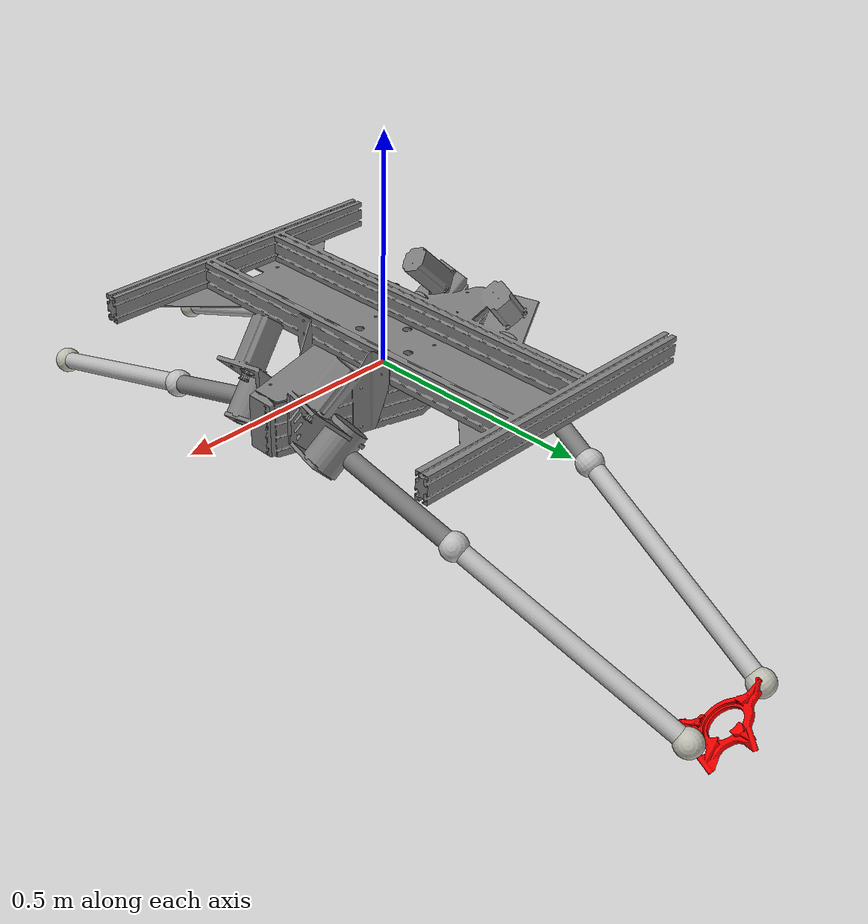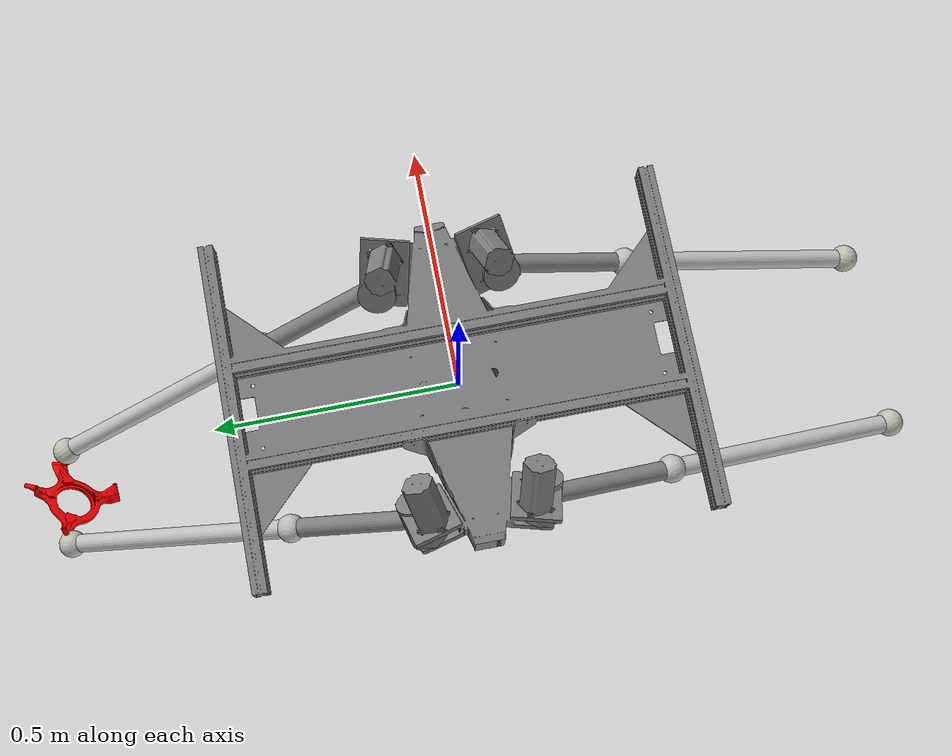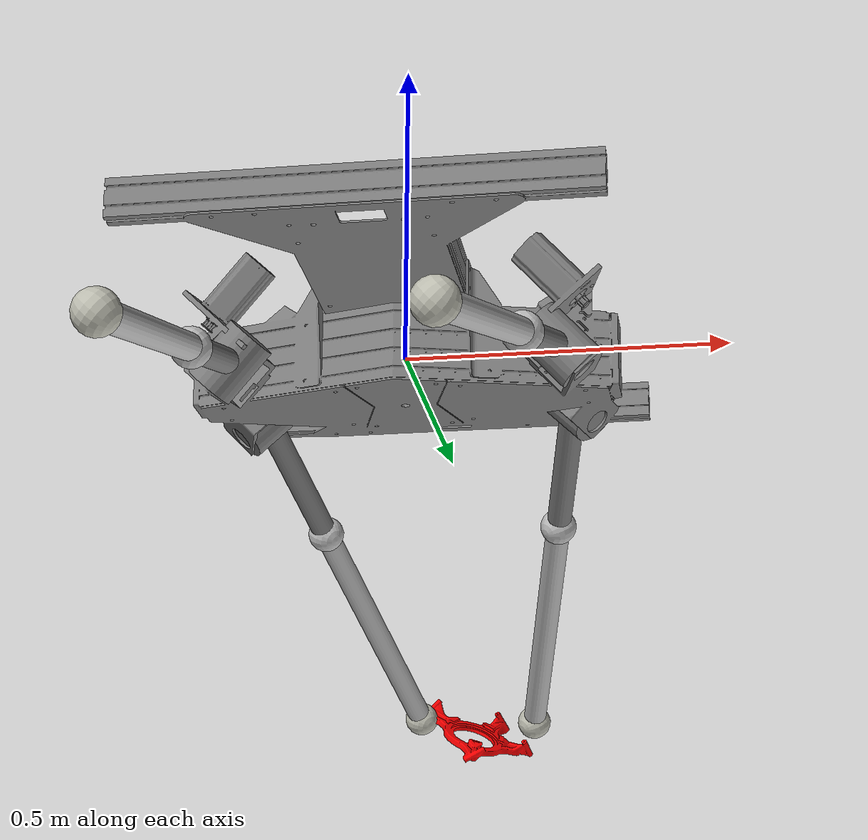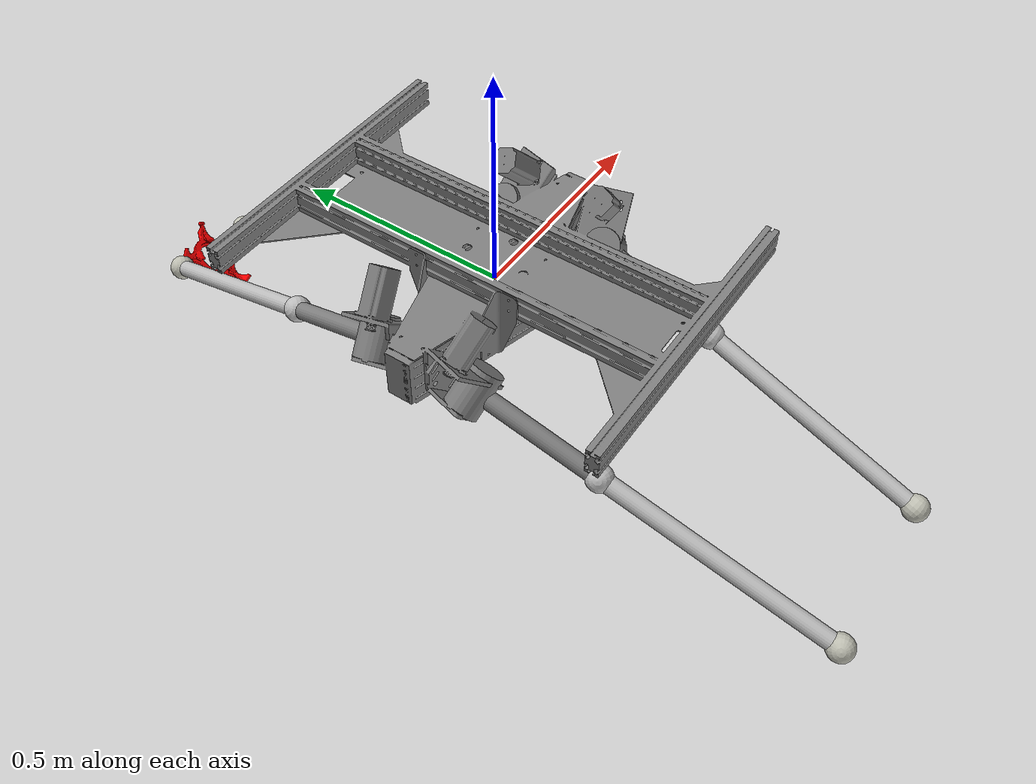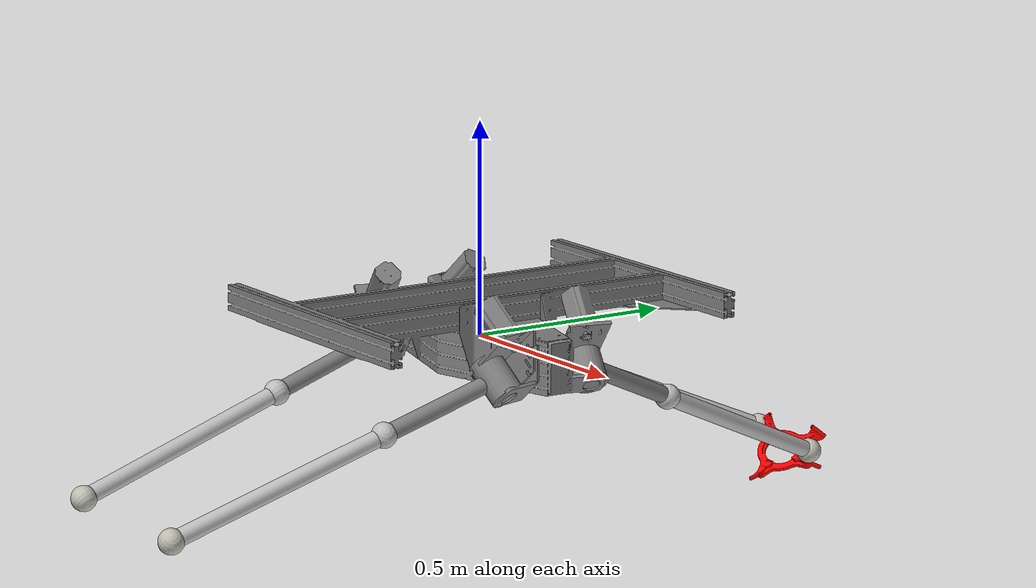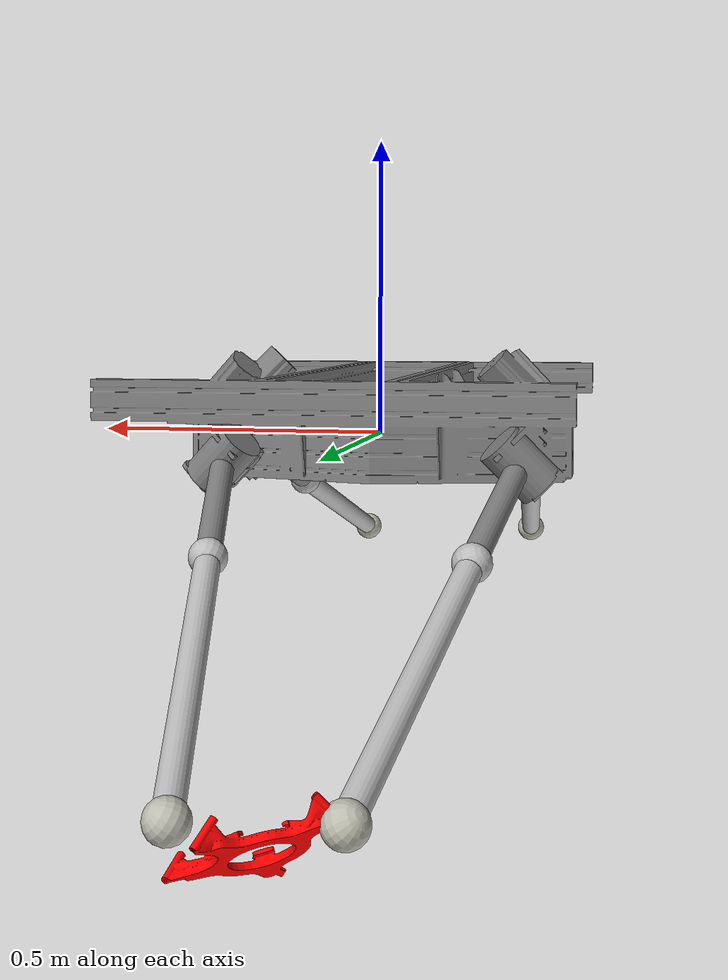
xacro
<?xml version="1.0" ?>
<robot name="Ragnar" xmlns:xacro="http://ros.org/wiki/xacro">

  <link name="base_link"/>

  <link name="base_link2">
    <inertial>
      <origin xyz="-4.80572213006859E-06 9.64495107789746E-06 -0.0184680705713898" rpy="0 0 0" />
      <mass value="26.5217124601092" />
      <inertia ixx="0.936457909215975" ixy="-0.00108838510526368" ixz="1.58187182756307E-06"
        iyy="1.50216890338436" iyz="1.0107984651762E-05" izz="2.28323593907717" />
    </inertial>
    <visual>
      <origin xyz="0 0 0" rpy="0 0 0" />
      <geometry>
        <mesh filename="package://ragnar_support/meshes/base_link.STL" />
      </geometry>
      <material name="">
        <color rgba="0.5 0.5 0.5 1" />
      </material>
    </visual>
    <collision>
      <origin xyz="0 0 0" rpy="0 0 0" />
      <geometry>
        <mesh filename="package://ragnar_support/meshes/base_link.STL" />
      </geometry>
    </collision>
  </link>

 <joint name="base_rotate" type="fixed">
    <origin xyz="0 0 0.05" rpy="0 0 1.57" />
    <parent link="base_link" />
    <child link="base_link2" />
    <axis xyz="0 0 0" />
  </joint>

<xacro:include filename="$(find ragnar_support)/urdf/ragnar_upper2_macro.xacro"/>
  <xacro:ragnar_upper2 num="1" x="0.122" y="0.249" z="-0.0877" r="-0.577" p="-0.783" w="-1.311" d1="0.300" d2="0.550"/>
<xacro:include filename="$(find ragnar_support)/urdf/ragnar_upper2_macro.xacro"/>
  <xacro:ragnar_upper2 num="2" x="-0.122" y="0.249" z="-0.0877" r="-2.698" p="-0.788" w="-1.834" d1="0.300" d2="0.550"/>
<xacro:include filename="$(find ragnar_support)/urdf/ragnar_upper2_macro.xacro"/>
  <xacro:ragnar_upper2 num="3" x="-0.122" y="-0.249" z="-0.0877" r="-0.456" p="-0.783" w="1.831" d1="0.300" d2="0.550"/>
<xacro:include filename="$(find ragnar_support)/urdf/ragnar_upper2_macro.xacro"/>
  <xacro:ragnar_upper2 num="4" x="0.122" y="-0.249" z="-0.0877" r="-2.531" p="-0.788" w="1.307" d1="0.300" d2="0.550"/>

<link name="ee_link_r">

  </link>
  <joint name="ee_joint_roll" type="revolute">
    <origin xyz="0 0.550 0"
      rpy="0 0 0" />
    <parent link="lower_arm_1_yaw" />
    <child link="ee_link_r" />
    <axis xyz="0 0 1" />
    <limit effort="0" lower="-3.1416" upper="3.1416" velocity="2.618"/>
  </joint>

  <link name="ee_link_p">

  </link>
  <joint name="ee_joint_pitch" type="revolute">
    <origin xyz="0 0 0" rpy="0 0 0" />
    <parent link="ee_link_r" />
    <child link="ee_link_p" />
    <axis xyz="1 0 0" />
<limit effort="0" lower="-3.1416" upper="3.1416" velocity="2.618"/>
  </joint>
  <link name="ee_link_y">
    <visual>
      <origin xyz="0 0 0" rpy="0 0 0" />
      <geometry>
        <mesh filename="package://ragnar_support/meshes/ee_link_y.STL" />
      </geometry>
      <material name="">
        <color rgba="1 0 0 1" />
      </material>
    </visual>
    <collision>
      <origin xyz="0 0 0" rpy="0 0 0" />
      <geometry>
        <mesh filename="package://ragnar_support/meshes/ee_link_y.STL" />
      </geometry>
    </collision>
  </link>
  <joint name="ee_joint_yaw" type="revolute">
    <origin xyz="0 0 0" rpy="5.55111512312578E-17 -2.77555756156289E-17 0" />
    <parent link="ee_link_p" />
    <child link="ee_link_y" />
    <axis xyz="0 -1 0" />
<limit effort="0" lower="-3.1416" upper="3.1416" velocity="2.618"/>
  </joint>
</robot>

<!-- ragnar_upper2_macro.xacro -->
<robot name="ragnar" xmlns:xacro="http://ros.org/wiki/xacro">
  <xacro:macro name="ragnar_upper2" params="num x y z r p w d1 d2">

  <link name="upper_arm_${num}">
    <visual>
      <origin xyz="0 0 0" rpy="0 1.57 0" />
      <geometry>
        <cylinder length="0.1" radius="0.04"/>
      </geometry>
      <material name="">
        <color rgba="0.5 0.5 0.5 1" />
      </material>
    </visual>
    <visual>
      <origin xyz="0 ${d1/2} 0" rpy="1.57 0 0" />
      <geometry>
        <cylinder length="${d1}" radius="0.02"/>
      </geometry>
      <material name="">
        <color rgba="0.5 0.5 0.5 1" />
      </material>
    </visual>

    <collision>
      <origin xyz="0 0 0" rpy="0 1.57 0" />
      <geometry>
        <cylinder length="0.1" radius="0.04"/>
      </geometry>
      <material name="">
        <color rgba="0.5 0.5 0.5 1" />
      </material>
    </collision>
    <collision>
      <origin xyz="0 ${d1/2} 0" rpy="1.57 0 0" />
      <geometry>
        <cylinder length="${d1}" radius="0.02"/>
      </geometry>
      <material name="">
        <color rgba="0.5 0.5 0.5 1" />
      </material>
    </collision>
  </link>

  <joint name="a${num}_j1" type="revolute">
    <origin xyz="${x} ${y} ${z}" rpy="${r} ${p} ${w}" />
    <parent link="base_link2" />
    <child link="upper_arm_${num}" />
    <axis xyz="-1.0 0 0" />
    <limit effort="0" lower="-3.1416" upper="3.1416" velocity="2.618"/>
  </joint>

  <link name="lower_arm_${num}_pitch"/>

  <link name="lower_arm_${num}_yaw">
    <visual>
      <origin xyz="0 0 0" rpy="0 0 0" />
      <geometry>
        <sphere radius="0.03"/>
      </geometry>
      <material name="">
        <color rgba="0.75 0.75 0.75 1" />
      </material>
    </visual>
    <visual>
      <origin xyz="0 ${d2/2} 0" rpy="1.57 0 0" />
      <geometry>
        <cylinder length="${d2}" radius="0.02"/>
      </geometry>
      <material name="">
        <color rgba="0.75 0.75 0.75 1" />
      </material>
    </visual>
    <visual>
      <origin xyz="0 ${d2} 0" rpy="0 0 0" />
      <geometry>
        <sphere radius="0.03"/>
      </geometry>
      <material name="">
        <color rgba="0.75 0.75 0.7 1" />
      </material>
    </visual>

    <collision>
      <origin xyz="0 0 0" rpy="0 1.57 0" />
      <geometry>
        <cylinder length="0.1" radius="0.04"/>
      </geometry>
      <material name="">
        <color rgba="0.75 0.75 0.75 1" />
      </material>
    </collision>
    <collision>
      <origin xyz="0 ${d2/2} 0" rpy="1.57 0 0" />
      <geometry>
        <cylinder length="${d2}" radius="0.02"/>
      </geometry>
      <material name="">
        <color rgba="0.75 0.75 0.75 1" />
      </material>
    </collision>
  </link>

  <joint name="a${num}_j2_pitch" type="revolute">
    <origin xyz="0 ${d1} 0" rpy="0 0 0" />
    <parent link="upper_arm_${num}" />
    <child link="lower_arm_${num}_pitch" />
    <axis xyz="-1.0 0 0" />
    <limit effort="0" lower="-3.1416" upper="3.1416" velocity="2.618"/>
  </joint>
  <joint name="a${num}_j2_yaw" type="revolute">
    <origin xyz="0 0 0" rpy="0 0 0" />
    <parent link="lower_arm_${num}_pitch" />
    <child link="lower_arm_${num}_yaw" />
    <axis xyz="0 0 1.0" />
    <limit effort="0" lower="-3.1416" upper="3.1416" velocity="2.618"/>
  </joint>

  </xacro:macro>
</robot>
